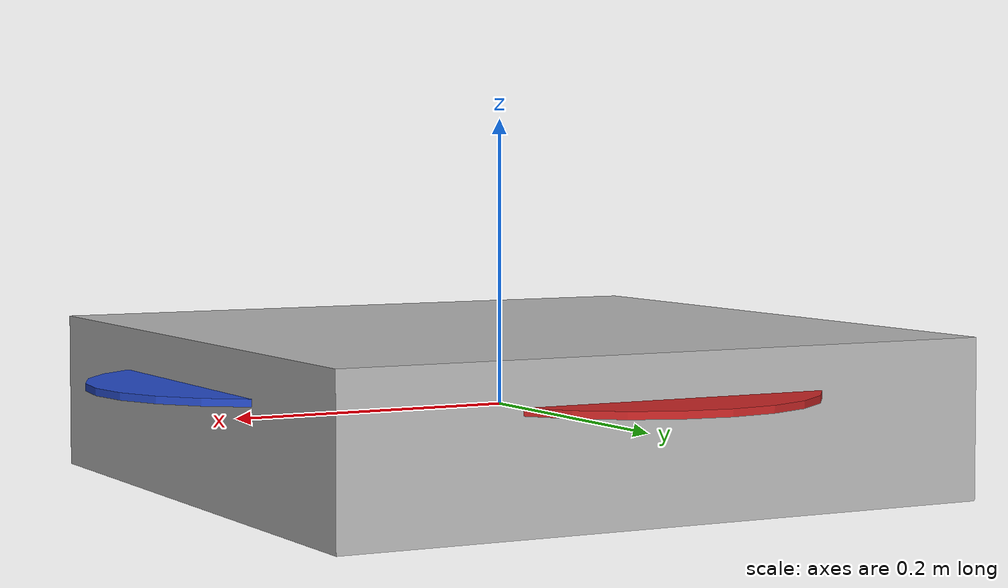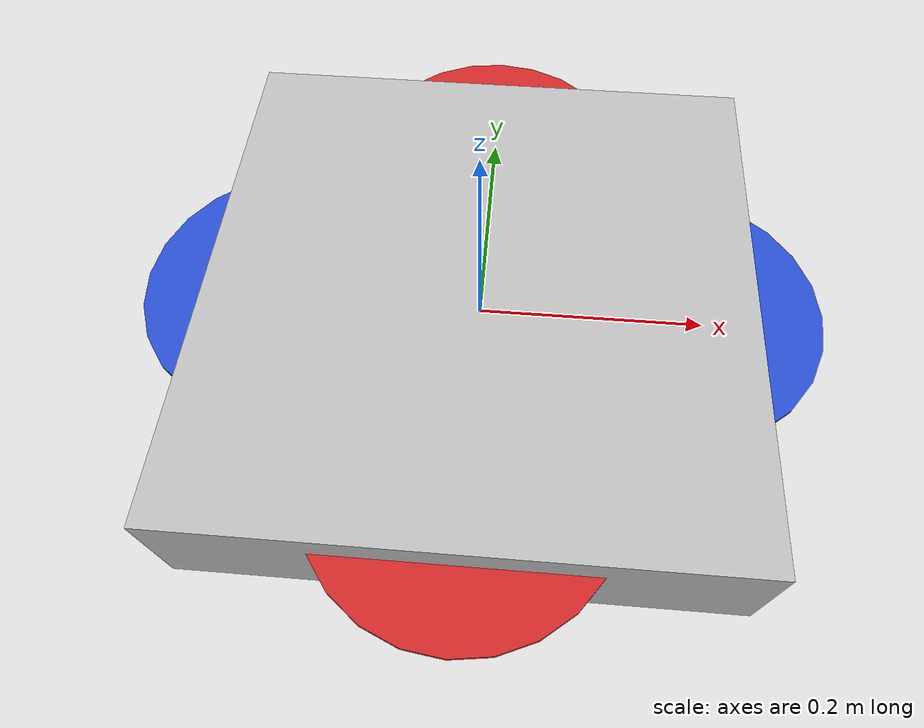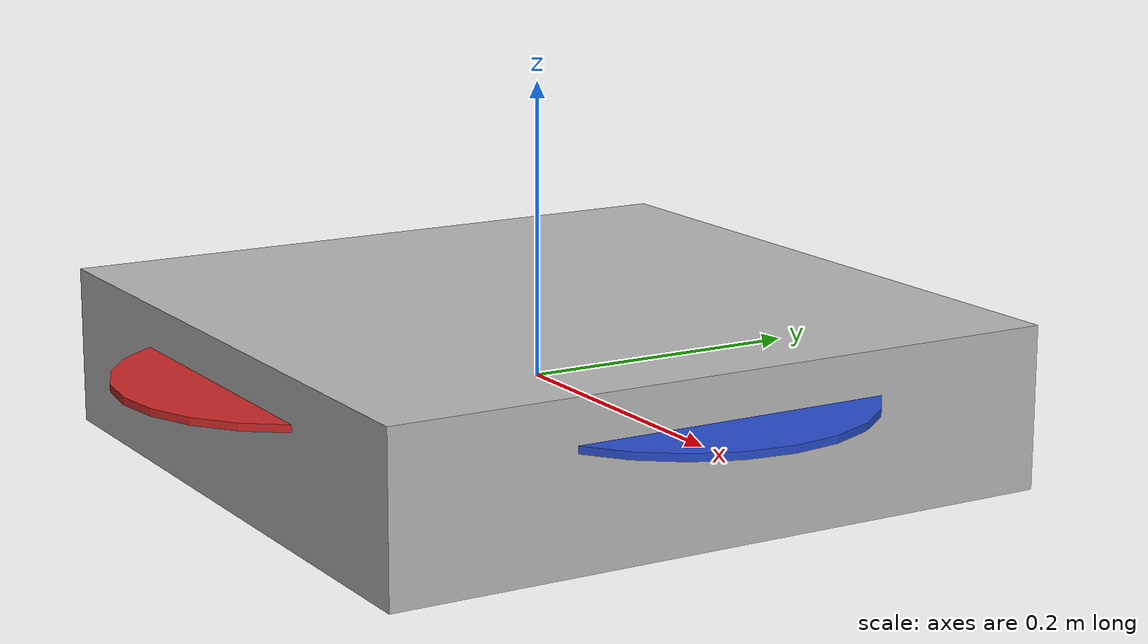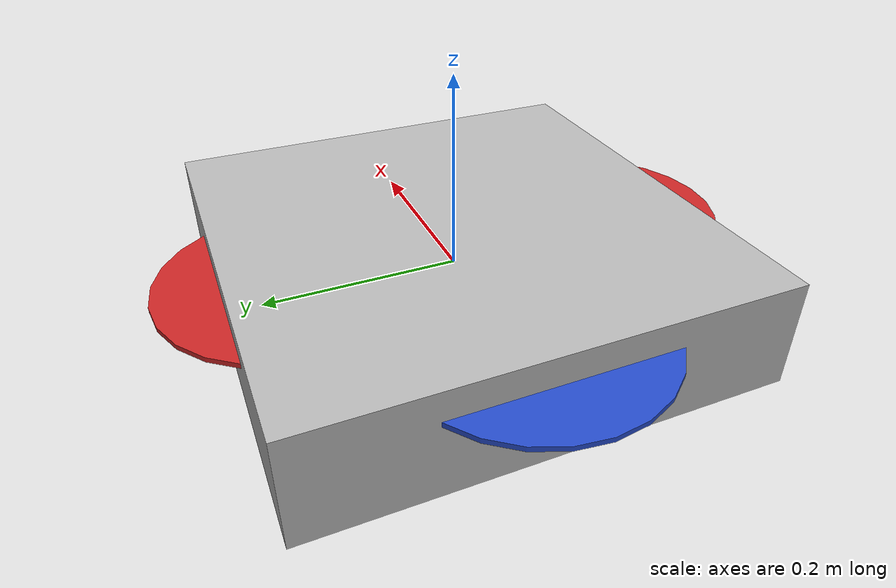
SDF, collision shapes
<sdf version='1.6'>
  <model name='crazy2fly'>
    <link name='base_link'>
      <pose>0 0 0 0 0 0</pose>
      <inertial>
        <pose>0 0 0 0 0 0</pose>
        <mass>0.99</mass>
        <inertia>
          <ixx>0.029125</ixx>
          <ixy>0</ixy>
          <ixz>0</ixz>
          <iyy>0.029125</iyy>
          <iyz>0</iyz>
          <izz>0.055225</izz>
        </inertia>
      </inertial>
      <collision name='base_link_inertia_collision'>
        <pose>0 0 0 0 0 0</pose>
        <geometry>
          <box>
            <size>0.47 0.47 0.11</size>
          </box>
        </geometry>
        <surface>
          <contact>
            <ode>
              <min_depth>0.001</min_depth>
              <max_vel>0</max_vel>
            </ode>
          </contact>
        </surface>
      </collision>
      <visual name='base_link_inertia_visual'>
        <pose>0 0 0 0 0 0</pose>
        <geometry>
          <mesh>
            <scale>0.001 0.001 0.001</scale>
            <uri>model://crazy2fly/meshes/colored_c2f_full.dae</uri>
          </mesh>
        </geometry>
      </visual>
      <gravity>1</gravity>
    </link>
    <link name='/imu_link'>
      <pose>0 0 0 0 0 0</pose>
      <inertial>
        <pose>0 0 0 0 0 0</pose>
        <mass>0.0001</mass>
        <inertia>
          <ixx>1e-05</ixx>
          <ixy>0</ixy>
          <ixz>0</ixz>
          <iyy>1e-05</iyy>
          <iyz>0</iyz>
          <izz>1e-05</izz>
        </inertia>
      </inertial>
    </link>
    <joint name='/imu_joint' type='fixed'>
      <child>/imu_link</child>
      <parent>base_link</parent>
    </joint>
    <link name='rotor_0'>
      <pose>0 -0.17 0.023 0 0 0</pose>
      <inertial>
        <pose>0 0 0 0 0 0</pose>
        <mass>0.005</mass>
        <inertia>
          <ixx>9.75e-07</ixx>
          <ixy>0</ixy>
          <ixz>0</ixz>
          <iyy>0.0000273104</iyy>
          <iyz>0</iyz>
          <izz>0.0000274004</izz>
        </inertia>
      </inertial>
      <collision name='rotor_0_collision'>
        <pose>0 0 0 0 0 0</pose>
        <geometry>
          <cylinder>
            <length>0.005</length>
            <radius>0.128</radius>
          </cylinder>
        </geometry>
      </collision>
      <visual name='rotor_0_visual'>
        <pose>0 0 0 0 0 0</pose>
        <geometry>
          <mesh>
            <scale>0.9 0.9 0.9</scale>
            <uri>model://iris/meshes/iris_prop_ccw.dae</uri>
          </mesh>
        </geometry>
        <material>
          <script>
            <name>Gazebo/Red</name>
            <uri>file://media/materials/scripts/gazebo.material</uri>
          </script>
        </material>
      </visual>
      <gravity>1</gravity>
    </link>
    <joint name='rotor_0_joint' type='revolute'>
      <child>rotor_0</child>
      <parent>base_link</parent>
      <axis>
        <xyz>0 0 1</xyz>
        <limit>
          <lower>-1e+16</lower>
          <upper>1e+16</upper>
        </limit>
        <dynamics>
          <spring_reference>0</spring_reference>
          <spring_stiffness>0</spring_stiffness>
        </dynamics>
        <use_parent_model_frame>1</use_parent_model_frame>
      </axis>
    </joint>
    <link name='rotor_1'>
      <pose>0 0.17 0.023 0 0 0</pose>
      <inertial>
        <pose>0 0 0 0 0 0</pose>
        <mass>0.005</mass>
        <inertia>
          <ixx>9.75e-07</ixx>
          <ixy>0</ixy>
          <ixz>0</ixz>
          <iyy>0.0000273104</iyy>
          <iyz>0</iyz>
          <izz>0.0000274004</izz>
        </inertia>
      </inertial>
      <collision name='rotor_1_collision'>
        <pose>0 0 0 0 0 0</pose>
        <geometry>
          <cylinder>
            <length>0.005</length>
            <radius>0.128</radius>
          </cylinder>
        </geometry>
      </collision>
      <visual name='rotor_1_visual'>
        <pose>0 0 0 0 0 0</pose>
        <geometry>
          <mesh>
            <scale>0.9 0.9 0.9</scale>
            <uri>model://iris/meshes/iris_prop_ccw.dae</uri>
          </mesh>
        </geometry>
        <material>
          <script>
            <name>Gazebo/Red</name>
            <uri>file://media/materials/scripts/gazebo.material</uri>
          </script>
        </material>
      </visual>
      <gravity>1</gravity>
    </link>
    <joint name='rotor_1_joint' type='revolute'>
      <child>rotor_1</child>
      <parent>base_link</parent>
      <axis>
        <xyz>0 0 1</xyz>
        <limit>
          <lower>-1e+16</lower>
          <upper>1e+16</upper>
        </limit>
        <dynamics>
          <spring_reference>0</spring_reference>
          <spring_stiffness>0</spring_stiffness>
        </dynamics>
        <use_parent_model_frame>1</use_parent_model_frame>
      </axis>
    </joint>
    <link name='rotor_2'>
      <pose>0.17 0 0.023 0 0 0</pose>
      <inertial>
        <pose>0 0 0 0 0 0</pose>
        <mass>0.005</mass>
        <inertia>
          <ixx>9.75e-07</ixx>
          <ixy>0</ixy>
          <ixz>0</ixz>
          <iyy>0.0000273104</iyy>
          <iyz>0</iyz>
          <izz>0.0000274004</izz>
        </inertia>
      </inertial>
      <collision name='rotor_2_collision'>
        <pose>0 0 0 0 0 0</pose>
        <geometry>
          <cylinder>
            <length>0.005</length>
            <radius>0.128</radius>
          </cylinder>
        </geometry>
      </collision>
      <visual name='rotor_2_visual'>
        <pose>0 0 0 0 0 0</pose>
        <geometry>
          <mesh>
            <scale>0.9 0.9 0.9</scale>
            <uri>model://iris/meshes/iris_prop_cw.dae</uri>
          </mesh>
        </geometry>
        <material>
          <script>
            <name>Gazebo/Blue</name>
            <uri>file://media/materials/scripts/gazebo.material</uri>
          </script>
        </material>
      </visual>
      <gravity>1</gravity>
    </link>
    <joint name='rotor_2_joint' type='revolute'>
      <child>rotor_2</child>
      <parent>base_link</parent>
      <axis>
        <xyz>0 0 1</xyz>
        <limit>
          <lower>-1e+16</lower>
          <upper>1e+16</upper>
        </limit>
        <dynamics>
          <spring_reference>0</spring_reference>
          <spring_stiffness>0</spring_stiffness>
        </dynamics>
        <use_parent_model_frame>1</use_parent_model_frame>
      </axis>
    </joint>
    <link name='rotor_3'>
      <pose>-0.17 0 0.023 0 0 0</pose>
      <inertial>
        <pose>0 0 0 0 0 0</pose>
        <mass>0.005</mass>
        <inertia>
          <ixx>9.75e-07</ixx>
          <ixy>0</ixy>
          <ixz>0</ixz>
          <iyy>0.0000273104</iyy>
          <iyz>0</iyz>
          <izz>0.0000274004</izz>
        </inertia>
      </inertial>
      <collision name='rotor_3_collision'>
        <pose>0 0 0 0 0 0</pose>
        <geometry>
          <cylinder>
            <length>0.005</length>
            <radius>0.128</radius>
          </cylinder>
        </geometry>
      </collision>
      <visual name='rotor_3_visual'>
        <pose>0 0 0 0 0 0</pose>
        <geometry>
          <mesh>
            <scale>0.9 0.9 0.9</scale>
            <uri>model://iris/meshes/iris_prop_cw.dae</uri>
          </mesh>
        </geometry>
        <material>
          <script>
            <name>Gazebo/Blue</name>
            <uri>file://media/materials/scripts/gazebo.material</uri>
          </script>
        </material>
      </visual>
      <gravity>1</gravity>
    </link>
    <joint name='rotor_3_joint' type='revolute'>
      <child>rotor_3</child>
      <parent>base_link</parent>
      <axis>
        <xyz>0 0 1</xyz>
        <limit>
          <lower>-1e+16</lower>
          <upper>1e+16</upper>
        </limit>
        <dynamics>
          <spring_reference>0</spring_reference>
          <spring_stiffness>0</spring_stiffness>
        </dynamics>
        <use_parent_model_frame>1</use_parent_model_frame>
      </axis>
    </joint>
    <plugin name='rosbag' filename='libgazebo_multirotor_base_plugin.so'>
      <robotNamespace/>
      <linkName>base_link</linkName>
      <rotorVelocitySlowdownSim>10</rotorVelocitySlowdownSim>
    </plugin>
    <plugin name='front_right_motor_model' filename='libgazebo_motor_model.so'>
      <robotNamespace/>
      <jointName>rotor_0_joint</jointName>
      <linkName>rotor_0</linkName>
      <turningDirection>ccw</turningDirection>
      <timeConstantUp>0.0025</timeConstantUp>
      <timeConstantDown>0.0025</timeConstantDown>
      <maxRotVelocity>1466</maxRotVelocity>
      <motorConstant>5.5e-06</motorConstant>
      <momentConstant>0.06</momentConstant>
      <commandSubTopic>/gazebo/command/motor_speed</commandSubTopic>
      <motorNumber>0</motorNumber>
      <fullModel>0</fullModel>
      <rotorDragCoefficient>0.00000175</rotorDragCoefficient>
      <rollingMomentCoefficient>1e-08</rollingMomentCoefficient>
      <motorSpeedPubTopic>/motor_speed/0</motorSpeedPubTopic>
      <rotorVelocitySlowdownSim>10</rotorVelocitySlowdownSim>
    </plugin>
    <plugin name='back_left_motor_model' filename='libgazebo_motor_model.so'>
      <robotNamespace/>
      <jointName>rotor_1_joint</jointName>
      <linkName>rotor_1</linkName>
      <turningDirection>ccw</turningDirection>
      <timeConstantUp>0.0025</timeConstantUp>
      <timeConstantDown>0.0025</timeConstantDown>
      <maxRotVelocity>1466</maxRotVelocity>
      <motorConstant>5.5e-06</motorConstant>
      <momentConstant>0.06</momentConstant>
      <commandSubTopic>/gazebo/command/motor_speed</commandSubTopic>
      <motorNumber>1</motorNumber>
      <fullModel>0</fullModel>
      <rotorDragCoefficient>0.00000175</rotorDragCoefficient>
      <rollingMomentCoefficient>1e-08</rollingMomentCoefficient>
      <motorSpeedPubTopic>/motor_speed/1</motorSpeedPubTopic>
      <rotorVelocitySlowdownSim>10</rotorVelocitySlowdownSim>
    </plugin>
    <plugin name='front_left_motor_model' filename='libgazebo_motor_model.so'>
      <robotNamespace/>
      <jointName>rotor_2_joint</jointName>
      <linkName>rotor_2</linkName>
      <turningDirection>cw</turningDirection>
      <timeConstantUp>0.0025</timeConstantUp>
      <timeConstantDown>0.0025</timeConstantDown>
      <maxRotVelocity>1466</maxRotVelocity>
      <motorConstant>5.5e-06</motorConstant>
      <momentConstant>0.06</momentConstant>
      <commandSubTopic>/gazebo/command/motor_speed</commandSubTopic>
      <motorNumber>2</motorNumber>
      <fullModel>0</fullModel>
      <rotorDragCoefficient>0.00000175</rotorDragCoefficient>
      <rollingMomentCoefficient>1e-08</rollingMomentCoefficient>
      <motorSpeedPubTopic>/motor_speed/2</motorSpeedPubTopic>
      <rotorVelocitySlowdownSim>10</rotorVelocitySlowdownSim>
    </plugin>
    <plugin name='back_right_motor_model' filename='libgazebo_motor_model.so'>
      <robotNamespace/>
      <jointName>rotor_3_joint</jointName>
      <linkName>rotor_3</linkName>
      <turningDirection>cw</turningDirection>
      <timeConstantUp>0.0025</timeConstantUp>
      <timeConstantDown>0.0025</timeConstantDown>
      <maxRotVelocity>1466</maxRotVelocity>
      <motorConstant>5.5e-06</motorConstant>
      <momentConstant>0.06</momentConstant>
      <commandSubTopic>/gazebo/command/motor_speed</commandSubTopic>
      <motorNumber>3</motorNumber>
      <fullModel>0</fullModel>
      <rotorDragCoefficient>0.00000175</rotorDragCoefficient>
      <rollingMomentCoefficient>1e-08</rollingMomentCoefficient>
      <motorSpeedPubTopic>/motor_speed/3</motorSpeedPubTopic>
      <rotorVelocitySlowdownSim>10</rotorVelocitySlowdownSim>
    </plugin>
    <plugin name='groundtruth_plugin' filename='libgazebo_groundtruth_plugin.so'>
      <robotNamespace/>
    </plugin>
    <plugin name='magnetometer_plugin' filename='libgazebo_magnetometer_plugin.so'>
      <robotNamespace/>
      <pubRate>100</pubRate>
      <noiseDensity>0.0004</noiseDensity>
      <randomWalk>6.4e-06</randomWalk>
      <biasCorrelationTime>600</biasCorrelationTime>
      <magTopic>/mag</magTopic>
    </plugin>
    <plugin name='barometer_plugin' filename='libgazebo_barometer_plugin.so'>
      <robotNamespace/>
      <pubRate>50</pubRate>
      <baroTopic>/baro</baroTopic>
      <baroDriftPaPerSec>0</baroDriftPaPerSec>
    </plugin>
    <plugin name='mavlink_interface' filename='libgazebo_mavlink_interface.so'>
      <robotNamespace/>
      <imuSubTopic>/imu</imuSubTopic>
      <magSubTopic>/mag</magSubTopic>
      <baroSubTopic>/baro</baroSubTopic>
      <mavlink_addr>INADDR_ANY</mavlink_addr>
      <mavlink_tcp_port>4560</mavlink_tcp_port>
      <mavlink_udp_port>14560</mavlink_udp_port>
      <serialEnabled>0</serialEnabled>
      <serialDevice>/dev/ttyACM0</serialDevice>
      <baudRate>921600</baudRate>
      <qgc_addr>INADDR_ANY</qgc_addr>
      <qgc_udp_port>14550</qgc_udp_port>
      <sdk_addr>INADDR_ANY</sdk_addr>
      <sdk_udp_port>14540</sdk_udp_port>
      <hil_mode>0</hil_mode>
      <hil_state_level>0</hil_state_level>
      <send_vision_estimation>0</send_vision_estimation>
      <send_odometry>1</send_odometry>
      <enable_lockstep>0</enable_lockstep>
      <use_tcp>1</use_tcp>
      <motorSpeedCommandPubTopic>/gazebo/command/motor_speed</motorSpeedCommandPubTopic>
      <control_channels>
        <channel name='rotor1'>
          <input_index>0</input_index>
          <input_offset>0</input_offset>
          <input_scaling>1466</input_scaling>
          <zero_position_disarmed>0</zero_position_disarmed>
          <zero_position_armed>0</zero_position_armed>
          <joint_control_type>velocity</joint_control_type>
        </channel>
        <channel name='rotor2'>
          <input_index>1</input_index>
          <input_offset>0</input_offset>
          <input_scaling>1466</input_scaling>
          <zero_position_disarmed>0</zero_position_disarmed>
          <zero_position_armed>0</zero_position_armed>
          <joint_control_type>velocity</joint_control_type>
        </channel>
        <channel name='rotor3'>
          <input_index>2</input_index>
          <input_offset>0</input_offset>
          <input_scaling>1466</input_scaling>
          <zero_position_disarmed>0</zero_position_disarmed>
          <zero_position_armed>0</zero_position_armed>
          <joint_control_type>velocity</joint_control_type>
        </channel>
        <channel name='rotor4'>
          <input_index>3</input_index>
          <input_offset>0</input_offset>
          <input_scaling>1466</input_scaling>
          <zero_position_disarmed>0</zero_position_disarmed>
          <zero_position_armed>0</zero_position_armed>
          <joint_control_type>velocity</joint_control_type>
        </channel>
      </control_channels>
    </plugin>
    <static>0</static>
    <plugin name='rotors_gazebo_imu_plugin' filename='libgazebo_imu_plugin.so'>
      <robotNamespace/>
      <linkName>/imu_link</linkName>
      <imuTopic>/imu</imuTopic>
      <gyroscopeNoiseDensity>0.00018665</gyroscopeNoiseDensity>
      <gyroscopeRandomWalk>3.8785e-05</gyroscopeRandomWalk>
      <gyroscopeBiasCorrelationTime>1000.0</gyroscopeBiasCorrelationTime>
      <gyroscopeTurnOnBiasSigma>0.0087</gyroscopeTurnOnBiasSigma>
      <accelerometerNoiseDensity>0.00186</accelerometerNoiseDensity>
      <accelerometerRandomWalk>0.006</accelerometerRandomWalk>
      <accelerometerBiasCorrelationTime>300.0</accelerometerBiasCorrelationTime>
      <accelerometerTurnOnBiasSigma>0.196</accelerometerTurnOnBiasSigma>
    </plugin>

    <plugin name="gazebo_ros_p3d" filename="libgazebo_ros_p3d.so">
        <update_rate>100.0</update_rate>
        <body_name>base_link</body_name>
        <frame_name>world</frame_name>
        <ros>
          <namespace>Drone0/Mocap</namespace>
        </ros>
    </plugin>
  </model>
</sdf>
